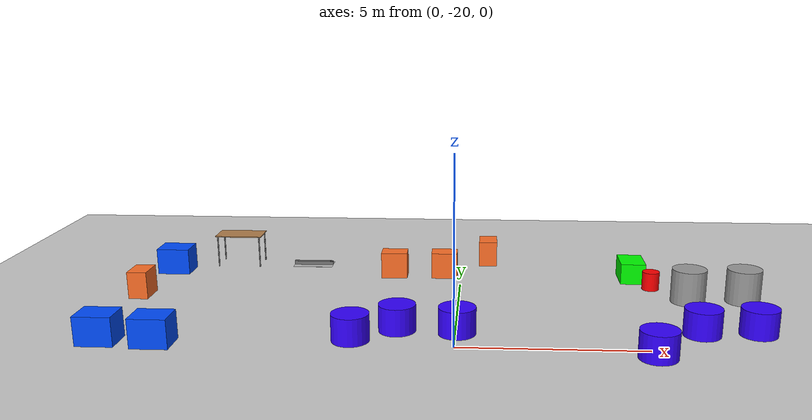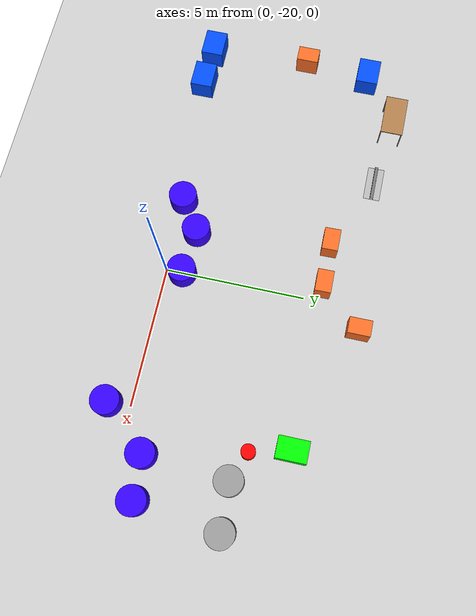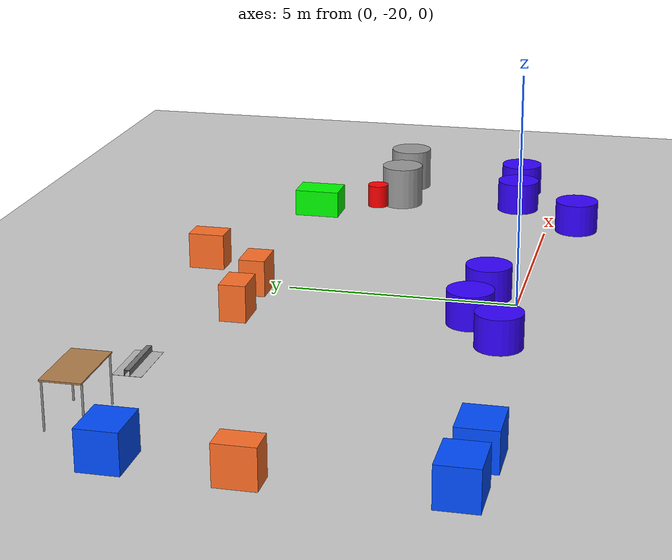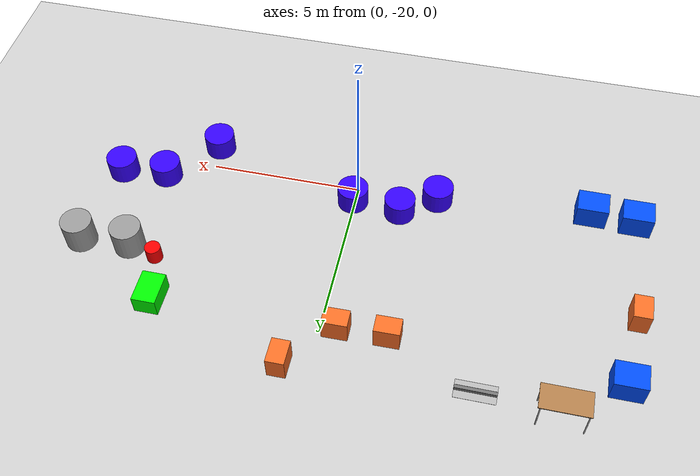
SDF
<sdf version="1.7">
 <world name="default">
  <model name="ground_plane">
   <static>1</static>
   <link name="link">
    <collision name="collision">
     <geometry><plane><normal>0 0 1</normal><size>100 100</size></plane></geometry>
     <surface>
      <contact><collide_bitmask>65535</collide_bitmask></contact>
      <friction><ode><mu>100</mu><mu2>50</mu2></ode></friction>
     </surface>
    </collision>
    <visual name="visual">
     <cast_shadows>0</cast_shadows>
     <geometry><plane><normal>0 0 1</normal><size>100 100</size></plane></geometry>
     <material>
      <script><uri>file://media/materials/scripts/gazebo.material</uri><name>Gazebo/Grey</name></script>
     </material>
    </visual>
   </link>
  </model>
  <model name="frc2016_rockwall">
   <static>1</static>
   <link name="link">
    <inertial>
     <mass>10</mass>
     <pose>0 0 0.08974 0 -0 0</pose>
     <inertia><ixx>0.327091</ixx><ixy>0</ixy><ixz>0</ixz><iyy>1.37417</iyy><iyz>0</iyz><izz>1.64109</izz></inertia>
    </inertial>
    <visual name="platform">
     <pose>0 0 0.06432 0 -0 0</pose>
     <geometry><box><size>1.27 0.5969 0.003175</size></box></geometry>
    </visual>
    <collision name="platform">
     <pose>0 0 0.06432 0 -0 0</pose>
     <geometry><box><size>1.27 0.5969 0.003175</size></box></geometry>
    </collision>
    <visual name="up1">
     <pose>0 0.05166 0.12537 0 -0 0</pose>
     <geometry><box><size>1.27 0.00462 0.11892</size></box></geometry>
     <material><ambient>0.46 0.46 0.46 1</ambient><diffuse>0.46 0.46 0.46 1</diffuse></material>
    </visual>
    <collision name="up1">
     <pose>0 0.05166 0.12537 0 -0 0</pose>
     <geometry><box><size>1.27 0.00462 0.11892</size></box></geometry>
    </collision>
    <visual name="up2">
     <pose>0 -0.05801 0.12537 0 -0 0</pose>
     <geometry><box><size>1.27 0.00462 0.11892</size></box></geometry>
     <material><ambient>0.46 0.46 0.46 1</ambient><diffuse>0.46 0.46 0.46 1</diffuse></material>
    </visual>
    <collision name="up2">
     <pose>0 -0.05801 0.12537 0 -0 0</pose>
     <geometry><box><size>1.27 0.00462 0.11892</size></box></geometry>
    </collision>
    <visual name="top">
     <pose>0 -0.00249 0.18252 0 -0 0</pose>
     <geometry><box><size>1.27 0.1143 0.00462</size></box></geometry>
     <material><ambient>0.46 0.46 0.46 1</ambient><diffuse>0.46 0.46 0.46 1</diffuse></material>
    </visual>
    <collision name="top">
     <pose>0 -0.00249 0.18252 0 -0 0</pose>
     <geometry><box><size>1.27 0.1143 0.00462</size></box></geometry>
    </collision>
   </link>
   <pose>-4.8804 -13.2751 0 0 -0 0</pose>
  </model>
  <model name="table_clone">
   <static>1</static>
   <link name="link">
    <collision name="surface">
     <pose>0 0 1 0 -0 0</pose>
     <geometry><box><size>1.5 0.8 0.03</size></box></geometry>
     <surface><friction><ode><mu>0.6</mu><mu2>0.6</mu2></ode></friction></surface>
    </collision>
    <visual name="visual1">
     <pose>0 0 1 0 -0 0</pose>
     <geometry><box><size>1.5 0.8 0.03</size></box></geometry>
     <material>
      <script><uri>file://media/materials/scripts/gazebo.material</uri><name>Gazebo/Wood</name></script>
     </material>
    </visual>
    <collision name="front_left_leg">
     <pose>0.68 0.38 0.5 0 -0 0</pose>
     <geometry><cylinder><radius>0.02</radius><length>1</length></cylinder></geometry>
    </collision>
    <visual name="front_left_leg">
     <pose>0.68 0.38 0.5 0 -0 0</pose>
     <geometry><cylinder><radius>0.02</radius><length>1</length></cylinder></geometry>
     <material>
      <script><uri>file://media/materials/scripts/gazebo.material</uri><name>Gazebo/Grey</name></script>
     </material>
    </visual>
    <collision name="front_right_leg">
     <pose>0.68 -0.38 0.5 0 -0 0</pose>
     <geometry><cylinder><radius>0.02</radius><length>1</length></cylinder></geometry>
    </collision>
    <visual name="front_right_leg">
     <pose>0.68 -0.38 0.5 0 -0 0</pose>
     <geometry><cylinder><radius>0.02</radius><length>1</length></cylinder></geometry>
     <material>
      <script><uri>file://media/materials/scripts/gazebo.material</uri><name>Gazebo/Grey</name></script>
     </material>
    </visual>
    <collision name="back_right_leg">
     <pose>-0.68 -0.38 0.5 0 -0 0</pose>
     <geometry><cylinder><radius>0.02</radius><length>1</length></cylinder></geometry>
    </collision>
    <visual name="back_right_leg">
     <pose>-0.68 -0.38 0.5 0 -0 0</pose>
     <geometry><cylinder><radius>0.02</radius><length>1</length></cylinder></geometry>
     <material>
      <script><uri>file://media/materials/scripts/gazebo.material</uri><name>Gazebo/Grey</name></script>
     </material>
    </visual>
    <collision name="back_left_leg">
     <pose>-0.68 0.38 0.5 0 -0 0</pose>
     <geometry><cylinder><radius>0.02</radius><length>1</length></cylinder></geometry>
    </collision>
    <visual name="back_left_leg">
     <pose>-0.68 0.38 0.5 0 -0 0</pose>
     <geometry><cylinder><radius>0.02</radius><length>1</length></cylinder></geometry>
     <material>
      <script><uri>file://media/materials/scripts/gazebo.material</uri><name>Gazebo/Grey</name></script>
     </material>
    </visual>
   </link>
   <pose>-7.3353 -13.0384 0 0 -0 0</pose>
  </model>
  <model name="blue_cylinder_2_3">
   <link name="link">
    <inertial>
     <mass>1</mass>
     <inertia><ixx>0.145833</ixx><ixy>0</ixy><ixz>0</ixz><iyy>0.145833</iyy><iyz>0</iyz><izz>0.125</izz></inertia>
    </inertial>
    <visual name="visual">
     <geometry><cylinder><radius>0.5</radius><length>0.74</length></cylinder></geometry>
     <material>
      <script><name>Gazebo/Grey</name><uri>file://media/materials/scripts/gazebo.material</uri></script>
      <shader type="pixel"><normal_map>__default__</normal_map></shader>
      <ambient>0.2 0 1 1</ambient>
      <diffuse>0.2 0 1 1</diffuse>
      <specular>0.2 0 1 1</specular>
      <emissive>0 0 0 1</emissive>
     </material>
    </visual>
    <collision name="collision">
     <geometry><cylinder><radius>0.5</radius><length>1</length></cylinder></geometry>
     <surface>
      <friction>
       <ode><mu>1</mu><mu2>1</mu2><fdir1>0 0 0</fdir1><slip1>0</slip1><slip2>0</slip2></ode>
       <torsional>
        <coefficient>1</coefficient>
        <patch_radius>0</patch_radius>
        <surface_radius>0</surface_radius>
        <use_patch_radius>1</use_patch_radius>
        <ode><slip>0</slip></ode>
       </torsional>
      </friction>
      <bounce><restitution_coefficient>0</restitution_coefficient><threshold>1e+06</threshold></bounce>
      <contact>
       <collide_without_contact>0</collide_without_contact>
       <collide_without_contact_bitmask>1</collide_without_contact_bitmask>
       <collide_bitmask>1</collide_bitmask>
       <ode>
        <soft_cfm>0</soft_cfm>
        <soft_erp>0.2</soft_erp>
        <kp>1e+13</kp>
        <kd>1</kd>
        <max_vel>0.01</max_vel>
        <min_depth>0</min_depth>
       </ode>
       <bullet>
        <split_impulse>1</split_impulse>
        <split_impulse_penetration_threshold>-0.01</split_impulse_penetration_threshold>
        <soft_cfm>0</soft_cfm>
        <soft_erp>0.2</soft_erp>
        <kp>1e+13</kp>
        <kd>1</kd>
       </bullet>
      </contact>
     </surface>
    </collision>
   </link>
   <static>0</static>
   <pose>5.02465 -20.7478 0.5 0 -0 0</pose>
  </model>
  <model name="blue_cylinder_2_6">
   <link name="link">
    <inertial>
     <mass>1</mass>
     <inertia><ixx>0.145833</ixx><ixy>0</ixy><ixz>0</ixz><iyy>0.145833</iyy><iyz>0</iyz><izz>0.125</izz></inertia>
    </inertial>
    <visual name="visual">
     <geometry><cylinder><radius>0.5</radius><length>0.74</length></cylinder></geometry>
     <material>
      <script><name>Gazebo/Grey</name><uri>file://media/materials/scripts/gazebo.material</uri></script>
      <shader type="pixel"><normal_map>__default__</normal_map></shader>
      <ambient>0.2 0 1 1</ambient>
      <diffuse>0.2 0 1 1</diffuse>
      <specular>0.2 0 1 1</specular>
      <emissive>0 0 0 1</emissive>
     </material>
    </visual>
    <collision name="collision">
     <geometry><cylinder><radius>0.5</radius><length>1</length></cylinder></geometry>
     <surface>
      <friction>
       <ode><mu>1</mu><mu2>1</mu2><fdir1>0 0 0</fdir1><slip1>0</slip1><slip2>0</slip2></ode>
       <torsional>
        <coefficient>1</coefficient>
        <patch_radius>0</patch_radius>
        <surface_radius>0</surface_radius>
        <use_patch_radius>1</use_patch_radius>
        <ode><slip>0</slip></ode>
       </torsional>
      </friction>
      <bounce><restitution_coefficient>0</restitution_coefficient><threshold>1e+06</threshold></bounce>
      <contact>
       <collide_without_contact>0</collide_without_contact>
       <collide_without_contact_bitmask>1</collide_without_contact_bitmask>
       <collide_bitmask>1</collide_bitmask>
       <ode>
        <soft_cfm>0</soft_cfm>
        <soft_erp>0.2</soft_erp>
        <kp>1e+13</kp>
        <kd>1</kd>
        <max_vel>0.01</max_vel>
        <min_depth>0</min_depth>
       </ode>
       <bullet>
        <split_impulse>1</split_impulse>
        <split_impulse_penetration_threshold>-0.01</split_impulse_penetration_threshold>
        <soft_cfm>0</soft_cfm>
        <soft_erp>0.2</soft_erp>
        <kp>1e+13</kp>
        <kd>1</kd>
       </bullet>
      </contact>
     </surface>
    </collision>
   </link>
   <static>0</static>
   <pose>7.9074 -19.0543 0.5 0 -0 0</pose>
  </model>
  <model name="blue_cylinder_2_7">
   <link name="link">
    <inertial>
     <mass>1</mass>
     <inertia><ixx>0.145833</ixx><ixy>0</ixy><ixz>0</ixz><iyy>0.145833</iyy><iyz>0</iyz><izz>0.125</izz></inertia>
    </inertial>
    <visual name="visual">
     <geometry><cylinder><radius>0.5</radius><length>0.74</length></cylinder></geometry>
     <material>
      <script><name>Gazebo/Grey</name><uri>file://media/materials/scripts/gazebo.material</uri></script>
      <shader type="pixel"><normal_map>__default__</normal_map></shader>
      <ambient>0.2 0 1 1</ambient>
      <diffuse>0.2 0 1 1</diffuse>
      <specular>0.2 0 1 1</specular>
      <emissive>0 0 0 1</emissive>
     </material>
    </visual>
    <collision name="collision">
     <geometry><cylinder><radius>0.5</radius><length>1</length></cylinder></geometry>
     <surface>
      <friction>
       <ode><mu>1</mu><mu2>1</mu2><fdir1>0 0 0</fdir1><slip1>0</slip1><slip2>0</slip2></ode>
       <torsional>
        <coefficient>1</coefficient>
        <patch_radius>0</patch_radius>
        <surface_radius>0</surface_radius>
        <use_patch_radius>1</use_patch_radius>
        <ode><slip>0</slip></ode>
       </torsional>
      </friction>
      <bounce><restitution_coefficient>0</restitution_coefficient><threshold>1e+06</threshold></bounce>
      <contact>
       <collide_without_contact>0</collide_without_contact>
       <collide_without_contact_bitmask>1</collide_without_contact_bitmask>
       <collide_bitmask>1</collide_bitmask>
       <ode>
        <soft_cfm>0</soft_cfm>
        <soft_erp>0.2</soft_erp>
        <kp>1e+13</kp>
        <kd>1</kd>
        <max_vel>0.01</max_vel>
        <min_depth>0</min_depth>
       </ode>
       <bullet>
        <split_impulse>1</split_impulse>
        <split_impulse_penetration_threshold>-0.01</split_impulse_penetration_threshold>
        <soft_cfm>0</soft_cfm>
        <soft_erp>0.2</soft_erp>
        <kp>1e+13</kp>
        <kd>1</kd>
       </bullet>
      </contact>
     </surface>
    </collision>
   </link>
   <static>0</static>
   <pose>6.42991 -19.1623 0.5 0 -0 0</pose>
  </model>
  <model name="blue_cylinder_2_14">
   <link name="link">
    <inertial>
     <mass>1</mass>
     <inertia><ixx>0.145833</ixx><ixy>0</ixy><ixz>0</ixz><iyy>0.145833</iyy><iyz>0</iyz><izz>0.125</izz></inertia>
    </inertial>
    <visual name="visual">
     <geometry><cylinder><radius>0.5</radius><length>0.74</length></cylinder></geometry>
     <material>
      <script><name>Gazebo/Grey</name><uri>file://media/materials/scripts/gazebo.material</uri></script>
      <shader type="pixel"><normal_map>__default__</normal_map></shader>
      <ambient>0.2 0 1 1</ambient>
      <diffuse>0.2 0 1 1</diffuse>
      <specular>0.2 0 1 1</specular>
      <emissive>0 0 0 1</emissive>
     </material>
    </visual>
    <collision name="collision">
     <geometry><cylinder><radius>0.5</radius><length>1</length></cylinder></geometry>
     <surface>
      <friction>
       <ode><mu>1</mu><mu2>1</mu2><fdir1>0 0 0</fdir1><slip1>0</slip1><slip2>0</slip2></ode>
       <torsional>
        <coefficient>1</coefficient>
        <patch_radius>0</patch_radius>
        <surface_radius>0</surface_radius>
        <use_patch_radius>1</use_patch_radius>
        <ode><slip>0</slip></ode>
       </torsional>
      </friction>
      <bounce><restitution_coefficient>0</restitution_coefficient><threshold>1e+06</threshold></bounce>
      <contact>
       <collide_without_contact>0</collide_without_contact>
       <collide_without_contact_bitmask>1</collide_without_contact_bitmask>
       <collide_bitmask>1</collide_bitmask>
       <ode>
        <soft_cfm>0</soft_cfm>
        <soft_erp>0.2</soft_erp>
        <kp>1e+13</kp>
        <kd>1</kd>
        <max_vel>0.01</max_vel>
        <min_depth>0</min_depth>
       </ode>
       <bullet>
        <split_impulse>1</split_impulse>
        <split_impulse_penetration_threshold>-0.01</split_impulse_penetration_threshold>
        <soft_cfm>0</soft_cfm>
        <soft_erp>0.2</soft_erp>
        <kp>1e+13</kp>
        <kd>1</kd>
       </bullet>
      </contact>
     </surface>
    </collision>
   </link>
   <static>0</static>
   <pose>-1.53379 -19.2344 0.5 0 -0 0</pose>
  </model>
  <model name="blue_cylinder_2_15">
   <link name="link">
    <inertial>
     <mass>1</mass>
     <inertia><ixx>0.145833</ixx><ixy>0</ixy><ixz>0</ixz><iyy>0.145833</iyy><iyz>0</iyz><izz>0.125</izz></inertia>
    </inertial>
    <visual name="visual">
     <geometry><cylinder><radius>0.5</radius><length>0.74</length></cylinder></geometry>
     <material>
      <script><name>Gazebo/Grey</name><uri>file://media/materials/scripts/gazebo.material</uri></script>
      <shader type="pixel"><normal_map>__default__</normal_map></shader>
      <ambient>0.2 0 1 1</ambient>
      <diffuse>0.2 0 1 1</diffuse>
      <specular>0.2 0 1 1</specular>
      <emissive>0 0 0 1</emissive>
     </material>
    </visual>
    <collision name="collision">
     <geometry><cylinder><radius>0.5</radius><length>1</length></cylinder></geometry>
     <surface>
      <friction>
       <ode><mu>1</mu><mu2>1</mu2><fdir1>0 0 0</fdir1><slip1>0</slip1><slip2>0</slip2></ode>
       <torsional>
        <coefficient>1</coefficient>
        <patch_radius>0</patch_radius>
        <surface_radius>0</surface_radius>
        <use_patch_radius>1</use_patch_radius>
        <ode><slip>0</slip></ode>
       </torsional>
      </friction>
      <bounce><restitution_coefficient>0</restitution_coefficient><threshold>1e+06</threshold></bounce>
      <contact>
       <collide_without_contact>0</collide_without_contact>
       <collide_without_contact_bitmask>1</collide_without_contact_bitmask>
       <collide_bitmask>1</collide_bitmask>
       <ode>
        <soft_cfm>0</soft_cfm>
        <soft_erp>0.2</soft_erp>
        <kp>1e+13</kp>
        <kd>1</kd>
        <max_vel>0.01</max_vel>
        <min_depth>0</min_depth>
       </ode>
       <bullet>
        <split_impulse>1</split_impulse>
        <split_impulse_penetration_threshold>-0.01</split_impulse_penetration_threshold>
        <soft_cfm>0</soft_cfm>
        <soft_erp>0.2</soft_erp>
        <kp>1e+13</kp>
        <kd>1</kd>
       </bullet>
      </contact>
     </surface>
    </collision>
   </link>
   <static>0</static>
   <pose>0.051507 -19.3785 0.5 0 -0 0</pose>
  </model>
  <model name="blue_cylinder_2_16">
   <link name="link">
    <inertial>
     <mass>1</mass>
     <inertia><ixx>0.145833</ixx><ixy>0</ixy><ixz>0</ixz><iyy>0.145833</iyy><iyz>0</iyz><izz>0.125</izz></inertia>
    </inertial>
    <visual name="visual">
     <geometry><cylinder><radius>0.5</radius><length>0.74</length></cylinder></geometry>
     <material>
      <script><name>Gazebo/Grey</name><uri>file://media/materials/scripts/gazebo.material</uri></script>
      <shader type="pixel"><normal_map>__default__</normal_map></shader>
      <ambient>0.2 0 1 1</ambient>
      <diffuse>0.2 0 1 1</diffuse>
      <specular>0.2 0 1 1</specular>
      <emissive>0 0 0 1</emissive>
     </material>
    </visual>
    <collision name="collision">
     <geometry><cylinder><radius>0.5</radius><length>1</length></cylinder></geometry>
     <surface>
      <friction>
       <ode><mu>1</mu><mu2>1</mu2><fdir1>0 0 0</fdir1><slip1>0</slip1><slip2>0</slip2></ode>
       <torsional>
        <coefficient>1</coefficient>
        <patch_radius>0</patch_radius>
        <surface_radius>0</surface_radius>
        <use_patch_radius>1</use_patch_radius>
        <ode><slip>0</slip></ode>
       </torsional>
      </friction>
      <bounce><restitution_coefficient>0</restitution_coefficient><threshold>1e+06</threshold></bounce>
      <contact>
       <collide_without_contact>0</collide_without_contact>
       <collide_without_contact_bitmask>1</collide_without_contact_bitmask>
       <collide_bitmask>1</collide_bitmask>
       <ode>
        <soft_cfm>0</soft_cfm>
        <soft_erp>0.2</soft_erp>
        <kp>1e+13</kp>
        <kd>1</kd>
        <max_vel>0.01</max_vel>
        <min_depth>0</min_depth>
       </ode>
       <bullet>
        <split_impulse>1</split_impulse>
        <split_impulse_penetration_threshold>-0.01</split_impulse_penetration_threshold>
        <soft_cfm>0</soft_cfm>
        <soft_erp>0.2</soft_erp>
        <kp>1e+13</kp>
        <kd>1</kd>
       </bullet>
      </contact>
     </surface>
    </collision>
   </link>
   <static>0</static>
   <pose>-2.66382 -19.9919 0.5 0 -0 0</pose>
  </model>
  <model name="orange_box_1">
   <link name="link">
    <inertial>
     <mass>1</mass>
     <inertia>
      <ixx>0.166667</ixx>
      <ixy>0</ixy>
      <ixz>0</ixz>
      <iyy>0.166667</iyy>
      <iyz>0</iyz>
      <izz>0.166667</izz>
     </inertia>
    </inertial>
    <visual name="visual">
     <geometry><box><size>0.57 0.8 0.8</size></box></geometry>
     <material>
      <script><name>Gazebo/Grey</name><uri>file://media/materials/scripts/gazebo.material</uri></script>
      <shader type="pixel"><normal_map>__default__</normal_map></shader>
      <ambient>0.698 0.369 0.176 1</ambient>
      <diffuse>1 0.435 0.153 1</diffuse>
      <specular>0.698 0.396 0.133 1</specular>
      <emissive>0.698 0.427 0.114 1</emissive>
     </material>
    </visual>
    <collision name="collision">
     <geometry><box><size>1 1 1</size></box></geometry>
     <surface>
      <friction>
       <ode><mu>1</mu><mu2>1</mu2><fdir1>0 0 0</fdir1><slip1>0</slip1><slip2>0</slip2></ode>
       <torsional>
        <coefficient>1</coefficient>
        <patch_radius>0</patch_radius>
        <surface_radius>0</surface_radius>
        <use_patch_radius>1</use_patch_radius>
        <ode><slip>0</slip></ode>
       </torsional>
      </friction>
      <bounce><restitution_coefficient>0</restitution_coefficient><threshold>1e+06</threshold></bounce>
      <contact>
       <collide_without_contact>0</collide_without_contact>
       <collide_without_contact_bitmask>1</collide_without_contact_bitmask>
       <collide_bitmask>1</collide_bitmask>
       <ode>
        <soft_cfm>0</soft_cfm>
        <soft_erp>0.2</soft_erp>
        <kp>1e+13</kp>
        <kd>1</kd>
        <max_vel>0.01</max_vel>
        <min_depth>0</min_depth>
       </ode>
       <bullet>
        <split_impulse>1</split_impulse>
        <split_impulse_penetration_threshold>-0.01</split_impulse_penetration_threshold>
        <soft_cfm>0</soft_cfm>
        <soft_erp>0.2</soft_erp>
        <kp>1e+13</kp>
        <kd>1</kd>
       </bullet>
      </contact>
     </surface>
    </collision>
   </link>
   <static>0</static>
   <pose>-2.08064 -14.4423 0.499995 -0 -1e-05 -1.55739</pose>
  </model>
  <model name="orange_box_1_clone">
   <link name="link">
    <inertial>
     <mass>1</mass>
     <inertia>
      <ixx>0.166667</ixx>
      <ixy>0</ixy>
      <ixz>0</ixz>
      <iyy>0.166667</iyy>
      <iyz>0</iyz>
      <izz>0.166667</izz>
     </inertia>
    </inertial>
    <visual name="visual">
     <geometry><box><size>0.57 0.8 0.8</size></box></geometry>
     <material>
      <script><name>Gazebo/Grey</name><uri>file://media/materials/scripts/gazebo.material</uri></script>
      <shader type="pixel"><normal_map>__default__</normal_map></shader>
      <ambient>0.698 0.369 0.176 1</ambient>
      <diffuse>1 0.435 0.153 1</diffuse>
      <specular>0.698 0.396 0.133 1</specular>
      <emissive>0.698 0.427 0.114 1</emissive>
     </material>
    </visual>
    <collision name="collision">
     <geometry><box><size>1 1 1</size></box></geometry>
     <surface>
      <friction>
       <ode><mu>1</mu><mu2>1</mu2><fdir1>0 0 0</fdir1><slip1>0</slip1><slip2>0</slip2></ode>
       <torsional>
        <coefficient>1</coefficient>
        <patch_radius>0</patch_radius>
        <surface_radius>0</surface_radius>
        <use_patch_radius>1</use_patch_radius>
        <ode><slip>0</slip></ode>
       </torsional>
      </friction>
      <bounce><restitution_coefficient>0</restitution_coefficient><threshold>1e+06</threshold></bounce>
      <contact>
       <collide_without_contact>0</collide_without_contact>
       <collide_without_contact_bitmask>1</collide_without_contact_bitmask>
       <collide_bitmask>1</collide_bitmask>
       <ode>
        <soft_cfm>0</soft_cfm>
        <soft_erp>0.2</soft_erp>
        <kp>1e+13</kp>
        <kd>1</kd>
        <max_vel>0.01</max_vel>
        <min_depth>0</min_depth>
       </ode>
       <bullet>
        <split_impulse>1</split_impulse>
        <split_impulse_penetration_threshold>-0.01</split_impulse_penetration_threshold>
        <soft_cfm>0</soft_cfm>
        <soft_erp>0.2</soft_erp>
        <kp>1e+13</kp>
        <kd>1</kd>
       </bullet>
      </contact>
     </surface>
    </collision>
   </link>
   <static>0</static>
   <pose>-0.519439 -14.401 0.499995 1e-05 -0 -1.55739</pose>
  </model>
  <model name="orange_box_5">
   <link name="link">
    <inertial>
     <mass>1</mass>
     <inertia>
      <ixx>0.166667</ixx>
      <ixy>0</ixy>
      <ixz>0</ixz>
      <iyy>0.166667</iyy>
      <iyz>0</iyz>
      <izz>0.166667</izz>
     </inertia>
    </inertial>
    <visual name="visual">
     <geometry><box><size>0.57 0.8 0.8</size></box></geometry>
     <material>
      <script><name>Gazebo/Grey</name><uri>file://media/materials/scripts/gazebo.material</uri></script>
      <shader type="pixel"><normal_map>__default__</normal_map></shader>
      <ambient>0.698 0.369 0.176 1</ambient>
      <diffuse>1 0.435 0.153 1</diffuse>
      <specular>0.698 0.396 0.133 1</specular>
      <emissive>0.698 0.427 0.114 1</emissive>
     </material>
    </visual>
    <collision name="collision">
     <geometry><box><size>1 1 1</size></box></geometry>
     <surface>
      <friction>
       <ode><mu>1</mu><mu2>1</mu2><fdir1>0 0 0</fdir1><slip1>0</slip1><slip2>0</slip2></ode>
       <torsional>
        <coefficient>1</coefficient>
        <patch_radius>0</patch_radius>
        <surface_radius>0</surface_radius>
        <use_patch_radius>1</use_patch_radius>
        <ode><slip>0</slip></ode>
       </torsional>
      </friction>
      <bounce><restitution_coefficient>0</restitution_coefficient><threshold>1e+06</threshold></bounce>
      <contact>
       <collide_without_contact>0</collide_without_contact>
       <collide_without_contact_bitmask>1</collide_without_contact_bitmask>
       <collide_bitmask>1</collide_bitmask>
       <ode>
        <soft_cfm>0</soft_cfm>
        <soft_erp>0.2</soft_erp>
        <kp>1e+13</kp>
        <kd>1</kd>
        <max_vel>0.01</max_vel>
        <min_depth>0</min_depth>
       </ode>
       <bullet>
        <split_impulse>1</split_impulse>
        <split_impulse_penetration_threshold>-0.01</split_impulse_penetration_threshold>
        <soft_cfm>0</soft_cfm>
        <soft_erp>0.2</soft_erp>
        <kp>1e+13</kp>
        <kd>1</kd>
       </bullet>
      </contact>
     </surface>
    </collision>
   </link>
   <static>0</static>
   <pose>0.836375 -12.9223 0.5 0 -0 0</pose>
  </model>
  <model name="green_box_10">
   <link name="link">
    <inertial>
     <mass>1</mass>
     <inertia>
      <ixx>0.166667</ixx>
      <ixy>0</ixy>
      <ixz>0</ixz>
      <iyy>0.166667</iyy>
      <iyz>0</iyz>
      <izz>0.166667</izz>
     </inertia>
    </inertial>
    <visual name="visual">
     <geometry><box><size>0.75 1.07 0.63</size></box></geometry>
     <material>
      <script><name>Gazebo/Grey</name><uri>file://media/materials/scripts/gazebo.material</uri></script>
      <shader type="pixel"><normal_map>__default__</normal_map></shader>
      <ambient>0 1 0 1</ambient>
      <diffuse>0 1 0 1</diffuse>
      <specular>0.01 0.01 0.01 1</specular>
      <emissive>0 0 0 1</emissive>
     </material>
    </visual>
    <collision name="collision">
     <geometry><box><size>0.84 1 0.78</size></box></geometry>
     <surface>
      <friction>
       <ode><mu>1</mu><mu2>1</mu2><fdir1>0 0 0</fdir1><slip1>0</slip1><slip2>0</slip2></ode>
       <torsional>
        <coefficient>1</coefficient>
        <patch_radius>0</patch_radius>
        <surface_radius>0</surface_radius>
        <use_patch_radius>1</use_patch_radius>
        <ode><slip>0</slip></ode>
       </torsional>
      </friction>
      <bounce><restitution_coefficient>0</restitution_coefficient><threshold>1e+06</threshold></bounce>
      <contact>
       <collide_without_contact>0</collide_without_contact>
       <collide_without_contact_bitmask>1</collide_without_contact_bitmask>
       <collide_bitmask>1</collide_bitmask>
       <ode>
        <soft_cfm>0</soft_cfm>
        <soft_erp>0.2</soft_erp>
        <kp>1e+13</kp>
        <kd>1</kd>
        <max_vel>0.01</max_vel>
        <min_depth>0</min_depth>
       </ode>
       <bullet>
        <split_impulse>1</split_impulse>
        <split_impulse_penetration_threshold>-0.01</split_impulse_penetration_threshold>
        <soft_cfm>0</soft_cfm>
        <soft_erp>0.2</soft_erp>
        <kp>1e+13</kp>
        <kd>1</kd>
       </bullet>
      </contact>
     </surface>
    </collision>
   </link>
   <static>0</static>
   <pose>5.28243 -14.363 0.39 0 -0 0</pose>
  </model>
  <model name="unit_cylinder_1">
   <link name="link">
    <inertial>
     <mass>1</mass>
     <inertia><ixx>0.145833</ixx><ixy>0</ixy><ixz>0</ixz><iyy>0.145833</iyy><iyz>0</iyz><izz>0.125</izz></inertia>
    </inertial>
    <visual name="visual">
     <geometry><cylinder><radius>0.5</radius><length>1</length></cylinder></geometry>
     <material>
      <script><name>Gazebo/Grey</name><uri>file://media/materials/scripts/gazebo.material</uri></script>
      <shader type="pixel"/>
     </material>
    </visual>
    <collision name="collision">
     <geometry><cylinder><radius>0.5</radius><length>1</length></cylinder></geometry>
     <surface>
      <friction>
       <ode><mu>1</mu><mu2>1</mu2><fdir1>0 0 0</fdir1><slip1>0</slip1><slip2>0</slip2></ode>
       <torsional>
        <coefficient>1</coefficient>
        <patch_radius>0</patch_radius>
        <surface_radius>0</surface_radius>
        <use_patch_radius>1</use_patch_radius>
        <ode><slip>0</slip></ode>
       </torsional>
      </friction>
      <bounce><restitution_coefficient>0</restitution_coefficient><threshold>1e+06</threshold></bounce>
      <contact>
       <collide_without_contact>0</collide_without_contact>
       <collide_without_contact_bitmask>1</collide_without_contact_bitmask>
       <collide_bitmask>1</collide_bitmask>
       <ode>
        <soft_cfm>0</soft_cfm>
        <soft_erp>0.2</soft_erp>
        <kp>1e+13</kp>
        <kd>1</kd>
        <max_vel>0.01</max_vel>
        <min_depth>0</min_depth>
       </ode>
       <bullet>
        <split_impulse>1</split_impulse>
        <split_impulse_penetration_threshold>-0.01</split_impulse_penetration_threshold>
        <soft_cfm>0</soft_cfm>
        <soft_erp>0.2</soft_erp>
        <kp>1e+13</kp>
        <kd>1</kd>
       </bullet>
      </contact>
     </surface>
    </collision>
   </link>
   <static>0</static>
   <pose>8.28142 -16.0885 0.499991 0 -0 0</pose>
  </model>
  <model name="unit_cylinder_2">
   <link name="link">
    <inertial>
     <mass>1</mass>
     <inertia><ixx>0.145833</ixx><ixy>0</ixy><ixz>0</ixz><iyy>0.145833</iyy><iyz>0</iyz><izz>0.125</izz></inertia>
    </inertial>
    <visual name="visual">
     <geometry><cylinder><radius>0.5</radius><length>1</length></cylinder></geometry>
     <material>
      <script><name>Gazebo/Grey</name><uri>file://media/materials/scripts/gazebo.material</uri></script>
      <shader type="pixel"/>
     </material>
    </visual>
    <collision name="collision">
     <geometry><cylinder><radius>0.5</radius><length>1</length></cylinder></geometry>
     <surface>
      <friction>
       <ode><mu>1</mu><mu2>1</mu2><fdir1>0 0 0</fdir1><slip1>0</slip1><slip2>0</slip2></ode>
       <torsional>
        <coefficient>1</coefficient>
        <patch_radius>0</patch_radius>
        <surface_radius>0</surface_radius>
        <use_patch_radius>1</use_patch_radius>
        <ode><slip>0</slip></ode>
       </torsional>
      </friction>
      <bounce><restitution_coefficient>0</restitution_coefficient><threshold>1e+06</threshold></bounce>
      <contact>
       <collide_without_contact>0</collide_without_contact>
       <collide_without_contact_bitmask>1</collide_without_contact_bitmask>
       <collide_bitmask>1</collide_bitmask>
       <ode>
        <soft_cfm>0</soft_cfm>
        <soft_erp>0.2</soft_erp>
        <kp>1e+13</kp>
        <kd>1</kd>
        <max_vel>0.01</max_vel>
        <min_depth>0</min_depth>
       </ode>
       <bullet>
        <split_impulse>1</split_impulse>
        <split_impulse_penetration_threshold>-0.01</split_impulse_penetration_threshold>
        <soft_cfm>0</soft_cfm>
        <soft_erp>0.2</soft_erp>
        <kp>1e+13</kp>
        <kd>1</kd>
       </bullet>
      </contact>
     </surface>
    </collision>
   </link>
   <static>0</static>
   <pose>6.67924 -16.171 0.5 0 -0 0</pose>
  </model>
  <model name="cylinder_3_1">
   <link name="link">
    <inertial>
     <mass>0.89</mass>
     <inertia>
      <ixx>0.129792</ixx>
      <ixy>0</ixy>
      <ixz>0</ixz>
      <iyy>0.129792</iyy>
      <iyz>0</iyz>
      <izz>0.11125</izz>
     </inertia>
    </inertial>
    <visual name="visual">
     <geometry><cylinder><radius>0.25</radius><length>0.54</length></cylinder></geometry>
     <material>
      <script><name>Gazebo/Grey</name><uri>file://media/materials/scripts/gazebo.material</uri></script>
      <shader type="pixel"><normal_map>__default__</normal_map></shader>
      <ambient>1 0 0 1</ambient>
      <diffuse>0.7 0.7 0.7 1</diffuse>
      <specular>0.01 0.01 0.01 1</specular>
      <emissive>0 0 0 1</emissive>
     </material>
    </visual>
    <collision name="collision">
     <geometry><cylinder><radius>0.5</radius><length>1</length></cylinder></geometry>
     <surface>
      <friction>
       <ode><mu>1</mu><mu2>1</mu2><fdir1>0 0 0</fdir1><slip1>0</slip1><slip2>0</slip2></ode>
       <torsional>
        <coefficient>1</coefficient>
        <patch_radius>0</patch_radius>
        <surface_radius>0</surface_radius>
        <use_patch_radius>1</use_patch_radius>
        <ode><slip>0</slip></ode>
       </torsional>
      </friction>
      <bounce><restitution_coefficient>0</restitution_coefficient><threshold>1e+06</threshold></bounce>
      <contact>
       <collide_without_contact>0</collide_without_contact>
       <collide_without_contact_bitmask>1</collide_without_contact_bitmask>
       <collide_bitmask>1</collide_bitmask>
       <ode>
        <soft_cfm>0</soft_cfm>
        <soft_erp>0.2</soft_erp>
        <kp>1e+13</kp>
        <kd>1</kd>
        <max_vel>0.01</max_vel>
        <min_depth>0</min_depth>
       </ode>
       <bullet>
        <split_impulse>1</split_impulse>
        <split_impulse_penetration_threshold>-0.01</split_impulse_penetration_threshold>
        <soft_cfm>0</soft_cfm>
        <soft_erp>0.2</soft_erp>
        <kp>1e+13</kp>
        <kd>1</kd>
       </bullet>
      </contact>
     </surface>
    </collision>
   </link>
   <static>0</static>
   <pose>5.65221 -15.7602 0.499991 0 -0 0</pose>
  </model>
  <model name="blue_box">
   <link name="link">
    <inertial>
     <mass>1</mass>
     <inertia>
      <ixx>0.166667</ixx>
      <ixy>0</ixy>
      <ixz>0</ixz>
      <iyy>0.166667</iyy>
      <iyz>0</iyz>
      <izz>0.166667</izz>
     </inertia>
    </inertial>
    <visual name="visual">
     <geometry><box><size>1 0.8 0.8</size></box></geometry>
     <material>
      <script><name>Gazebo/Grey</name><uri>file://media/materials/scripts/gazebo.material</uri></script>
      <shader type="pixel"><normal_map>__default__</normal_map></shader>
      <ambient>0 0.3 1 1</ambient>
      <diffuse>0 0.3 1 1</diffuse>
      <specular>0 0.3 1 1</specular>
      <emissive>0 0 0 1</emissive>
     </material>
    </visual>
    <collision name="collision">
     <geometry><box><size>1 1 1</size></box></geometry>
     <surface>
      <friction>
       <ode><mu>1</mu><mu2>1</mu2><fdir1>0 0 0</fdir1><slip1>0</slip1><slip2>0</slip2></ode>
       <torsional>
        <coefficient>1</coefficient>
        <patch_radius>0</patch_radius>
        <surface_radius>0</surface_radius>
        <use_patch_radius>1</use_patch_radius>
        <ode><slip>0</slip></ode>
       </torsional>
      </friction>
      <bounce><restitution_coefficient>0</restitution_coefficient><threshold>1e+06</threshold></bounce>
      <contact>
       <collide_without_contact>0</collide_without_contact>
       <collide_without_contact_bitmask>1</collide_without_contact_bitmask>
       <collide_bitmask>1</collide_bitmask>
       <ode>
        <soft_cfm>0</soft_cfm>
        <soft_erp>0.2</soft_erp>
        <kp>1e+13</kp>
        <kd>1</kd>
        <max_vel>0.01</max_vel>
        <min_depth>0</min_depth>
       </ode>
       <bullet>
        <split_impulse>1</split_impulse>
        <split_impulse_penetration_threshold>-0.01</split_impulse_penetration_threshold>
        <soft_cfm>0</soft_cfm>
        <soft_erp>0.2</soft_erp>
        <kp>1e+13</kp>
        <kd>1</kd>
       </bullet>
      </contact>
     </surface>
    </collision>
   </link>
   <static>0</static>
   <pose>-9.09614 -14.2806 0.5 0 -0 0</pose>
  </model>
  <model name="orange_box_9">
   <link name="link">
    <inertial>
     <mass>1</mass>
     <inertia>
      <ixx>0.166667</ixx>
      <ixy>0</ixy>
      <ixz>0</ixz>
      <iyy>0.166667</iyy>
      <iyz>0</iyz>
      <izz>0.166667</izz>
     </inertia>
    </inertial>
    <visual name="visual">
     <geometry><box><size>0.57 0.8 0.8</size></box></geometry>
     <material>
      <script><name>Gazebo/Grey</name><uri>file://media/materials/scripts/gazebo.material</uri></script>
      <shader type="pixel"><normal_map>__default__</normal_map></shader>
      <ambient>0.698 0.369 0.176 1</ambient>
      <diffuse>1 0.435 0.153 1</diffuse>
      <specular>0.698 0.396 0.133 1</specular>
      <emissive>0.698 0.427 0.114 1</emissive>
     </material>
    </visual>
    <collision name="collision">
     <geometry><box><size>1 1 1</size></box></geometry>
     <surface>
      <friction>
       <ode><mu>1</mu><mu2>1</mu2><fdir1>0 0 0</fdir1><slip1>0</slip1><slip2>0</slip2></ode>
       <torsional>
        <coefficient>1</coefficient>
        <patch_radius>0</patch_radius>
        <surface_radius>0</surface_radius>
        <use_patch_radius>1</use_patch_radius>
        <ode><slip>0</slip></ode>
       </torsional>
      </friction>
      <bounce><restitution_coefficient>0</restitution_coefficient><threshold>1e+06</threshold></bounce>
      <contact>
       <collide_without_contact>0</collide_without_contact>
       <collide_without_contact_bitmask>1</collide_without_contact_bitmask>
       <collide_bitmask>1</collide_bitmask>
       <ode>
        <soft_cfm>0</soft_cfm>
        <soft_erp>0.2</soft_erp>
        <kp>1e+13</kp>
        <kd>1</kd>
        <max_vel>0.01</max_vel>
        <min_depth>0</min_depth>
       </ode>
       <bullet>
        <split_impulse>1</split_impulse>
        <split_impulse_penetration_threshold>-0.01</split_impulse_penetration_threshold>
        <soft_cfm>0</soft_cfm>
        <soft_erp>0.2</soft_erp>
        <kp>1e+13</kp>
        <kd>1</kd>
       </bullet>
      </contact>
     </surface>
    </collision>
   </link>
   <static>0</static>
   <pose>-9.34262 -16.6637 0.5 0 -0 0</pose>
  </model>
  <model name="blue_box_2">
   <link name="link">
    <inertial>
     <mass>1</mass>
     <inertia>
      <ixx>0.166667</ixx>
      <ixy>0</ixy>
      <ixz>0</ixz>
      <iyy>0.166667</iyy>
      <iyz>0</iyz>
      <izz>0.166667</izz>
     </inertia>
    </inertial>
    <visual name="visual">
     <geometry><box><size>1 0.8 0.8</size></box></geometry>
     <material>
      <script><name>Gazebo/Grey</name><uri>file://media/materials/scripts/gazebo.material</uri></script>
      <shader type="pixel"><normal_map>__default__</normal_map></shader>
      <ambient>0 0.3 1 1</ambient>
      <diffuse>0 0.3 1 1</diffuse>
      <specular>0 0.3 1 1</specular>
      <emissive>0 0 0 1</emissive>
     </material>
    </visual>
    <collision name="collision">
     <geometry><box><size>1 1 1</size></box></geometry>
     <surface>
      <friction>
       <ode><mu>1</mu><mu2>1</mu2><fdir1>0 0 0</fdir1><slip1>0</slip1><slip2>0</slip2></ode>
       <torsional>
        <coefficient>1</coefficient>
        <patch_radius>0</patch_radius>
        <surface_radius>0</surface_radius>
        <use_patch_radius>1</use_patch_radius>
        <ode><slip>0</slip></ode>
       </torsional>
      </friction>
      <bounce><restitution_coefficient>0</restitution_coefficient><threshold>1e+06</threshold></bounce>
      <contact>
       <collide_without_contact>0</collide_without_contact>
       <collide_without_contact_bitmask>1</collide_without_contact_bitmask>
       <collide_bitmask>1</collide_bitmask>
       <ode>
        <soft_cfm>0</soft_cfm>
        <soft_erp>0.2</soft_erp>
        <kp>1e+13</kp>
        <kd>1</kd>
        <max_vel>0.01</max_vel>
        <min_depth>0</min_depth>
       </ode>
       <bullet>
        <split_impulse>1</split_impulse>
        <split_impulse_penetration_threshold>-0.01</split_impulse_penetration_threshold>
        <soft_cfm>0</soft_cfm>
        <soft_erp>0.2</soft_erp>
        <kp>1e+13</kp>
        <kd>1</kd>
       </bullet>
      </contact>
     </surface>
    </collision>
   </link>
   <static>0</static>
   <pose>-9.09614 -20.3203 0.5 0 -0 0</pose>
  </model>
  <model name="blue_box_3">
   <link name="link">
    <inertial>
     <mass>1</mass>
     <inertia>
      <ixx>0.166667</ixx>
      <ixy>0</ixy>
      <ixz>0</ixz>
      <iyy>0.166667</iyy>
      <iyz>0</iyz>
      <izz>0.166667</izz>
     </inertia>
    </inertial>
    <visual name="visual">
     <geometry><box><size>1 0.8 0.8</size></box></geometry>
     <material>
      <script><name>Gazebo/Grey</name><uri>file://media/materials/scripts/gazebo.material</uri></script>
      <shader type="pixel"><normal_map>__default__</normal_map></shader>
      <ambient>0 0.3 1 1</ambient>
      <diffuse>0 0.3 1 1</diffuse>
      <specular>0 0.3 1 1</specular>
      <emissive>0 0 0 1</emissive>
     </material>
    </visual>
    <collision name="collision">
     <geometry><box><size>1 1 1</size></box></geometry>
     <surface>
      <friction>
       <ode><mu>1</mu><mu2>1</mu2><fdir1>0 0 0</fdir1><slip1>0</slip1><slip2>0</slip2></ode>
       <torsional>
        <coefficient>1</coefficient>
        <patch_radius>0</patch_radius>
        <surface_radius>0</surface_radius>
        <use_patch_radius>1</use_patch_radius>
        <ode><slip>0</slip></ode>
       </torsional>
      </friction>
      <bounce><restitution_coefficient>0</restitution_coefficient><threshold>1e+06</threshold></bounce>
      <contact>
       <collide_without_contact>0</collide_without_contact>
       <collide_without_contact_bitmask>1</collide_without_contact_bitmask>
       <collide_bitmask>1</collide_bitmask>
       <ode>
        <soft_cfm>0</soft_cfm>
        <soft_erp>0.2</soft_erp>
        <kp>1e+13</kp>
        <kd>1</kd>
        <max_vel>0.01</max_vel>
        <min_depth>0</min_depth>
       </ode>
       <bullet>
        <split_impulse>1</split_impulse>
        <split_impulse_penetration_threshold>-0.01</split_impulse_penetration_threshold>
        <soft_cfm>0</soft_cfm>
        <soft_erp>0.2</soft_erp>
        <kp>1e+13</kp>
        <kd>1</kd>
       </bullet>
      </contact>
     </surface>
    </collision>
   </link>
   <static>0</static>
   <pose>-7.6583 -20.4022 0.5 0 -0 0</pose>
  </model>
 </world>
</sdf>
